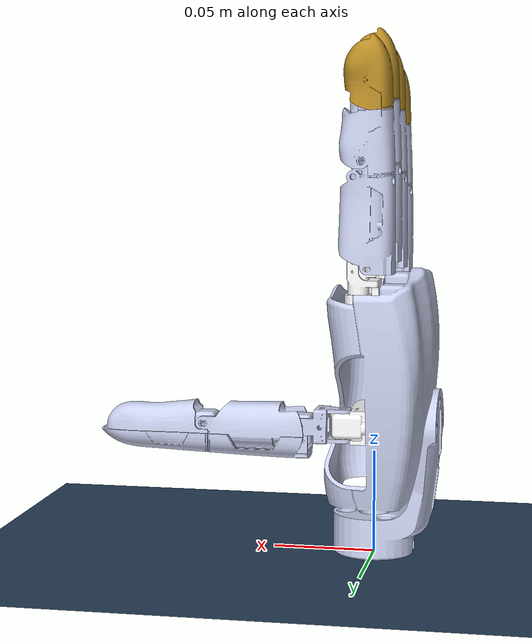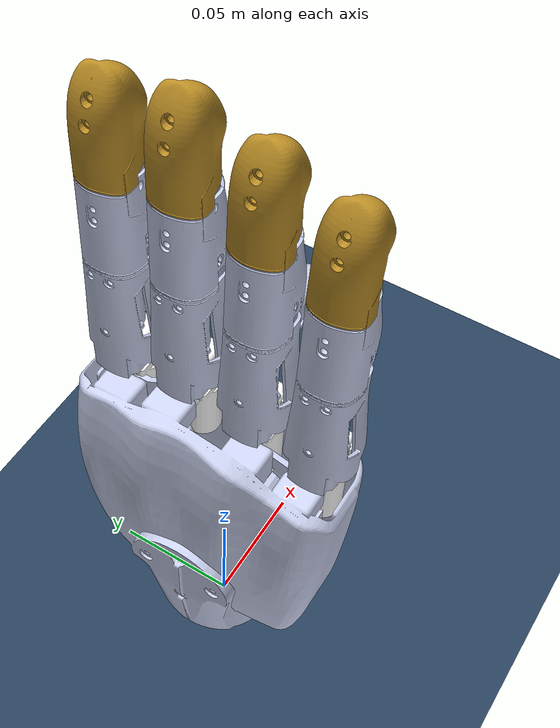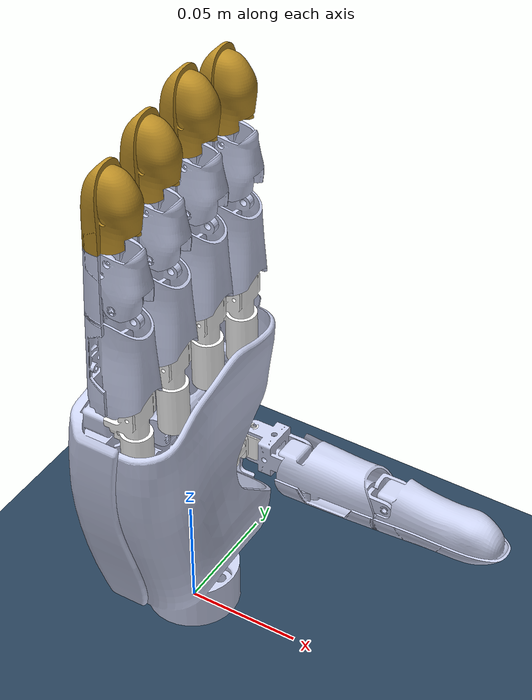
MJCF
<?xml version='1.0' encoding='utf-8'?>
<mujoco model="gaiahand20_right">
  <compiler angle="radian" meshdir="." autolimits="true" inertiafromgeom="false" />
  <option timestep="0.002" gravity="0 0 0" integrator="implicitfast" />
  <statistic center="0 0 0.075" extent="0.22" />
  <visual>
    <global offwidth="1280" offheight="1280" />
    <quality shadowsize="4096" />
  </visual>
  <default>
    <joint damping="0.08" armature="0.0001" limited="true" />
    <geom type="mesh" contype="0" conaffinity="0" group="1" density="0" />
    <position kp="8" kv="0.3" ctrllimited="true" />
  </default>
  <asset>
    <texture type="skybox" builtin="gradient" rgb1="0.3 0.5 0.7" rgb2="0 0 0" width="512" height="3072" />
    <texture type="2d" name="groundplane" builtin="checker" mark="edge" rgb1="0.2 0.3 0.4" rgb2="0.1 0.2 0.3" markrgb="0.8 0.8 0.8" width="300" height="300" />
    <material name="groundplane" texture="groundplane" texuniform="true" texrepeat="5 5" reflectance="0.2" />
    <mesh name="right_base_link_mesh" file="meshes/right/right_base_link.STL" />
    <mesh name="right_thumb_link_1_mesh" file="meshes/right/right_thumb_link_1.STL" />
    <mesh name="right_thumb_link_2_mesh" file="meshes/right/right_thumb_link_2.STL" />
    <mesh name="right_thumb_link_3_mesh" file="meshes/right/right_thumb_link_3.STL" />
    <mesh name="right_thumb_link_4_mesh" file="meshes/right/right_thumb_link_4.STL" />
    <mesh name="right_index_link_1_mesh" file="meshes/right/right_index_link_1.STL" />
    <mesh name="right_index_link_2_mesh" file="meshes/right/right_index_link_2.STL" />
    <mesh name="right_index_link_3_mesh" file="meshes/right/right_index_link_3.STL" />
    <mesh name="right_index_link_4_mesh" file="meshes/right/right_index_link_4.STL" />
    <mesh name="right_middle_link_1_mesh" file="meshes/right/right_middle_link_1.STL" />
    <mesh name="right_middle_link_2_mesh" file="meshes/right/right_middle_link_2.STL" />
    <mesh name="right_middle_link_3_mesh" file="meshes/right/right_middle_link_3.STL" />
    <mesh name="right_middle_link_4_mesh" file="meshes/right/right_middle_link_4.STL" />
    <mesh name="right_ring_link_1_mesh" file="meshes/right/right_ring_link_1.STL" />
    <mesh name="right_ring_link_2_mesh" file="meshes/right/right_ring_link_2.STL" />
    <mesh name="right_ring_link_3_mesh" file="meshes/right/right_ring_link_3.STL" />
    <mesh name="right_ring_link_4_mesh" file="meshes/right/right_ring_link_4.STL" />
    <mesh name="right_little_link_1_mesh" file="meshes/right/right_little_link_1.STL" />
    <mesh name="right_little_link_2_mesh" file="meshes/right/right_little_link_2.STL" />
    <mesh name="right_little_link_3_mesh" file="meshes/right/right_little_link_3.STL" />
    <mesh name="right_little_link_4_mesh" file="meshes/right/right_little_link_4.STL" />
  </asset>
  <worldbody>
    <light pos="0 0 1.5" dir="0 0 -1" directional="true" />
    <light pos="0.5 0.5 1" dir="-0.5 -0.5 -1" />
    <geom name="floor" pos="0 0 -0.001" size="0 0 0.05" type="plane" material="groundplane" />
    <body name="right_base_link">
      <geom name="right_base_link_visual" mesh="right_base_link_mesh" rgba="0.792156862745098 0.819607843137255 0.933333333333333 1" />
      <body name="right_thumb_link_1" pos="-0.012868 0.032392 0.068452" quat="0.000102169994467 -0.70710677342 0.000107364690885 -0.70710677342">
        <inertial pos="4.59873452525114E-06 0.0117078315613512 0.0170967629151401" mass="0.0293793580936" diaginertia="5e-06 2e-06 6e-06" />
        <joint name="right_thumb_joint_1" type="hinge" axis="0 0 1" range="-0.6981 0.6981" />
        <geom name="right_thumb_link_1_visual" mesh="right_thumb_link_1_mesh" rgba="1 1 1 1" />
        <body name="right_thumb_link_2" pos="0 0 0.02355" quat="0.707105482511 0 -0.707108079859 0">
          <inertial pos="0.00999538873035311 -3.32108297113054E-09 8.40028750509238E-05" mass="0.00436512694858" diaginertia="1e-07 1e-07 1e-07" />
          <joint name="right_thumb_joint_2" type="hinge" axis="0 0 -1" range="-1.0472 1.5708" />
          <geom name="right_thumb_link_2_visual" mesh="right_thumb_link_2_mesh" rgba="0.792156862745098 0.819607843137255 0.933333333333333 1" />
          <body name="right_thumb_link_3" pos="0.02 0 0" quat="0.707105482511 -0.707108079859 0 0">
            <inertial pos="0.0155316673642969 -0.00474995778430732 5.38957684267233E-06" mass="0.0306111200992" diaginertia="1e-06 6e-06 6e-06" />
            <joint name="right_thumb_joint_3" type="hinge" axis="0 0 1" range="0 1.5708" />
            <geom name="right_thumb_link_3_visual" mesh="right_thumb_link_3_mesh" rgba="0.792156862745098 0.819607843137255 0.933333333333333 1" />
            <body name="right_thumb_link_4" pos="0.0465 0 0">
              <inertial pos="0.0158264161448218 -0.00419485306612965 4.87986416741748E-06" mass="0.0275584560503" diaginertia="1e-06 5e-06 5e-06" />
              <joint name="right_thumb_joint_4" type="hinge" axis="0 0 1" range="0 1.5708" />
              <geom name="right_thumb_link_4_visual" mesh="right_thumb_link_4_mesh" rgba="0.792156862745098 0.819607843137255 0.933333333333333 1" />
              <body name="right_thumb_tip" pos="0.046 0 0" />
            </body>
          </body>
        </body>
      </body>
      <body name="right_index_link_1" pos="-0.0016678 0.035869 0.1306" quat="0.000102169994467 -0.70710677342 0.000107364690885 -0.70710677342">
        <inertial pos="0.000743908629022523 -5.55341323325853E-06 0.00357430253049612" mass="0.0288509871302" diaginertia="4e-06 4e-06 1e-06" />
        <joint name="right_index_joint_1" type="hinge" axis="0 0 1" range="-0.6981 0.3491" />
        <geom name="right_index_link_1_visual" mesh="right_index_link_1_mesh" rgba="1 1 1 1" />
        <body name="right_index_link_2" pos="0.014 0 0" quat="0.707105482511 0.707108079859 0 0">
          <inertial pos="0.0313933776378512 -0.00152877020642319 -4.42497851162182E-06" mass="0.0304803820111" diaginertia="7e-06 7e-06 1e-06" />
          <joint name="right_index_joint_2" type="hinge" axis="0 0 1" range="0 1.5708" />
          <geom name="right_index_link_2_visual" mesh="right_index_link_2_mesh" rgba="0.792156862745098 0.819607843137255 0.933333333333333 1" />
          <body name="right_index_link_3" pos="0.0489 0.00312 0">
            <inertial pos="0.0121799388549619 -0.00381320078798462 -0.0010283975785302" mass="0.00393370093981" diaginertia="1e-07 1e-07 1e-07" />
            <joint name="right_index_joint_3" type="hinge" axis="0 0 1" range="0 1.5708" />
            <geom name="right_index_link_3_visual" mesh="right_index_link_3_mesh" rgba="0.792156862745098 0.819607843137255 0.933333333333333 1" />
            <body name="right_index_link_4" pos="0.03 0 0">
              <inertial pos="0.0093271688625714 -0.00406005222330917 7.09260613723853E-05" mass="0.00496625808965" diaginertia="1e-07 1e-07 1e-07" />
              <joint name="right_index_joint_4" type="hinge" axis="0 0 1" range="0 1.5708" />
              <geom name="right_index_link_4_visual" mesh="right_index_link_4_mesh" rgba="0.729411764705882 0.552941176470588 0.145098039215686 1" />
              <body name="right_index_tip" pos="0.028 0 0" />
            </body>
          </body>
        </body>
      </body>
      <body name="right_middle_link_1" pos="-0.0016678 0.011319 0.13459" quat="0.000102169994467 -0.70710677342 0.000107364690885 -0.70710677342">
        <inertial pos="0.000743895525769034 -7.09562966077701E-06 0.0035743025137824" mass="0.0288509871629" diaginertia="4e-06 4e-06 1e-06" />
        <joint name="right_middle_joint_1" type="hinge" axis="0 0 1" range="-0.5236 0.5236" />
        <geom name="right_middle_link_1_visual" mesh="right_middle_link_1_mesh" rgba="1 1 1 1" />
        <body name="right_middle_link_2" pos="0.014 -2.9024E-05 0" quat="0.707105102605 0.707107699952 -0.000732988104312 -0.000732985411901">
          <inertial pos="0.0313933781819635 -0.00152877026923516 -4.42504304134193E-06" mass="0.0304803814022" diaginertia="7e-06 7e-06 1e-06" />
          <joint name="right_middle_joint_2" type="hinge" axis="0 0 1" range="0 1.5708" />
          <geom name="right_middle_link_2_visual" mesh="right_middle_link_2_mesh" rgba="0.792156862745098 0.819607843137255 0.933333333333333 1" />
          <body name="right_middle_link_3" pos="0.0489 0.00312 0">
            <inertial pos="0.012179937973861 -0.00381320273518451 -0.00102839797795001" mass="0.00393370033062" diaginertia="1e-07 1e-07 1e-07" />
            <joint name="right_middle_joint_3" type="hinge" axis="0 0 1" range="0 1.5708" />
            <geom name="right_middle_link_3_visual" mesh="right_middle_link_3_mesh" rgba="0.792156862745098 0.819607843137255 0.933333333333333 1" />
            <body name="right_middle_link_4" pos="0.03 0 0">
              <inertial pos="0.00932716914952836 -0.00406005253689868 7.09260383274651E-05" mass="0.00496625793579" diaginertia="1e-07 1e-07 1e-07" />
              <joint name="right_middle_joint_4" type="hinge" axis="0 0 1" range="0 1.5708" />
              <geom name="right_middle_link_4_visual" mesh="right_middle_link_4_mesh" rgba="0.729411764705882 0.552941176470588 0.145098039215686 1" />
              <body name="right_middle_tip" pos="0.028 0 0" />
            </body>
          </body>
        </body>
      </body>
      <body name="right_ring_link_1" pos="-0.0016678 -0.013175 0.12959" quat="0.000102169994467 -0.70710677342 0.000107364690885 -0.70710677342">
        <inertial pos="0.000743908629034874 -5.55341323327761E-06 0.00357430253047761" mass="0.0288509871302" diaginertia="4e-06 4e-06 1e-06" />
        <joint name="right_ring_joint_1" type="hinge" axis="0 0 1" range="-0.3491 0.6109" />
        <geom name="right_ring_link_1_visual" mesh="right_ring_link_1_mesh" rgba="1 1 1 1" />
        <body name="right_ring_link_2" pos="0.014 0 0" quat="0.707105482511 0.707108079859 0 0">
          <inertial pos="0.0313933776378529 -0.00152877020638439 -4.42497851214224E-06" mass="0.0304803820111" diaginertia="7e-06 7e-06 1e-06" />
          <joint name="right_ring_joint_2" type="hinge" axis="0 0 1" range="0 1.5708" />
          <geom name="right_ring_link_2_visual" mesh="right_ring_link_2_mesh" rgba="0.792156862745098 0.819607843137255 0.933333333333333 1" />
          <body name="right_ring_link_3" pos="0.0489 0.00312 0">
            <inertial pos="0.012179938765627 -0.00381320056058107 -0.00102839749609262" mass="0.00393370099614" diaginertia="1e-07 1e-07 1e-07" />
            <joint name="right_ring_joint_3" type="hinge" axis="0 0 1" range="0 1.5708" />
            <geom name="right_ring_link_3_visual" mesh="right_ring_link_3_mesh" rgba="0.792156862745098 0.819607843137255 0.933333333333333 1" />
            <body name="right_ring_link_4" pos="0.03 0 0">
              <inertial pos="0.00932716886256235 -0.00406005222329535 7.09260613699393E-05" mass="0.00496625808965" diaginertia="1e-07 1e-07 1e-07" />
              <joint name="right_ring_joint_4" type="hinge" axis="0 0 1" range="0 1.5708" />
              <geom name="right_ring_link_4_visual" mesh="right_ring_link_4_mesh" rgba="0.729411764705882 0.552941176470588 0.145098039215686 1" />
              <body name="right_ring_tip" pos="0.028 0 0" />
            </body>
          </body>
        </body>
      </body>
      <body name="right_little_link_1" pos="-0.0016678 -0.037584 0.12258" quat="0.000102169994467 -0.70710677342 0.000107364690885 -0.70710677342">
        <inertial pos="0.000743895525769471 -7.09562966128702E-06 0.00357430251378242" mass="0.0288509871629" diaginertia="4e-06 4e-06 1e-06" />
        <joint name="right_little_joint_1" type="hinge" axis="0 0 1" range="0 0.6981" />
        <geom name="right_little_link_1_visual" mesh="right_little_link_1_mesh" rgba="1 1 1 1" />
        <body name="right_little_link_2" pos="0.014 -2.9024E-05 0" quat="0.707105102605 0.707107699952 -0.000732988104312 -0.000732985411901">
          <inertial pos="0.0313933781817062 -0.0015287702708865 -4.42504300206953E-06" mass="0.0304803814066" diaginertia="7e-06 7e-06 1e-06" />
          <joint name="right_little_joint_2" type="hinge" axis="0 0 1" range="0 1.5708" />
          <geom name="right_little_link_2_visual" mesh="right_little_link_2_mesh" rgba="0.792156862745098 0.819607843137255 0.933333333333333 1" />
          <body name="right_little_link_3" pos="0.0489 0.00312 0">
            <inertial pos="0.0121799378841558 -0.00381320250691307 -0.0010283978953143" mass="0.00393370038722" diaginertia="1e-07 1e-07 1e-07" />
            <joint name="right_little_joint_3" type="hinge" axis="0 0 1" range="0 1.5708" />
            <geom name="right_little_link_3_visual" mesh="right_little_link_3_mesh" rgba="0.792156862745098 0.819607843137255 0.933333333333333 1" />
            <body name="right_little_link_4" pos="0.03 0 0">
              <inertial pos="0.00932716914948373 -0.00406005253700263 7.09260383258623E-05" mass="0.00496625793579" diaginertia="1e-07 1e-07 1e-07" />
              <joint name="right_little_joint_4" type="hinge" axis="0 0 1" range="0 1.5708" />
              <geom name="right_little_link_4_visual" mesh="right_little_link_4_mesh" rgba="0.729411764705882 0.552941176470588 0.145098039215686 1" />
              <body name="right_little_tip" pos="0.028 0 0" />
            </body>
          </body>
        </body>
      </body>
    </body>
  </worldbody>
  <actuator>
    <position name="right_thumb_joint_1_actuator" joint="right_thumb_joint_1" ctrlrange="-0.6981 0.6981" />
    <position name="right_thumb_joint_2_actuator" joint="right_thumb_joint_2" ctrlrange="-1.0472 1.5708" />
    <position name="right_thumb_joint_3_actuator" joint="right_thumb_joint_3" ctrlrange="0 1.5708" />
    <position name="right_thumb_joint_4_actuator" joint="right_thumb_joint_4" ctrlrange="0 1.5708" />
    <position name="right_index_joint_1_actuator" joint="right_index_joint_1" ctrlrange="-0.6981 0.3491" />
    <position name="right_index_joint_2_actuator" joint="right_index_joint_2" ctrlrange="0 1.5708" />
    <position name="right_index_joint_3_actuator" joint="right_index_joint_3" ctrlrange="0 1.5708" />
    <position name="right_index_joint_4_actuator" joint="right_index_joint_4" ctrlrange="0 1.5708" />
    <position name="right_middle_joint_1_actuator" joint="right_middle_joint_1" ctrlrange="-0.5236 0.5236" />
    <position name="right_middle_joint_2_actuator" joint="right_middle_joint_2" ctrlrange="0 1.5708" />
    <position name="right_middle_joint_3_actuator" joint="right_middle_joint_3" ctrlrange="0 1.5708" />
    <position name="right_middle_joint_4_actuator" joint="right_middle_joint_4" ctrlrange="0 1.5708" />
    <position name="right_ring_joint_1_actuator" joint="right_ring_joint_1" ctrlrange="-0.3491 0.6109" />
    <position name="right_ring_joint_2_actuator" joint="right_ring_joint_2" ctrlrange="0 1.5708" />
    <position name="right_ring_joint_3_actuator" joint="right_ring_joint_3" ctrlrange="0 1.5708" />
    <position name="right_ring_joint_4_actuator" joint="right_ring_joint_4" ctrlrange="0 1.5708" />
    <position name="right_little_joint_1_actuator" joint="right_little_joint_1" ctrlrange="0 0.6981" />
    <position name="right_little_joint_2_actuator" joint="right_little_joint_2" ctrlrange="0 1.5708" />
    <position name="right_little_joint_3_actuator" joint="right_little_joint_3" ctrlrange="0 1.5708" />
    <position name="right_little_joint_4_actuator" joint="right_little_joint_4" ctrlrange="0 1.5708" />
  </actuator>
  <equality>
    <joint name="right_index_joint_4_mimic" joint1="right_index_joint_4" joint2="right_index_joint_3" polycoef="0 1 0 0 0" solref="0.004 1" />
    <joint name="right_middle_joint_4_mimic" joint1="right_middle_joint_4" joint2="right_middle_joint_3" polycoef="0 1 0 0 0" solref="0.004 1" />
    <joint name="right_ring_joint_4_mimic" joint1="right_ring_joint_4" joint2="right_ring_joint_3" polycoef="0 1 0 0 0" solref="0.004 1" />
    <joint name="right_little_joint_4_mimic" joint1="right_little_joint_4" joint2="right_little_joint_3" polycoef="0 1 0 0 0" solref="0.004 1" />
  </equality>
</mujoco>
